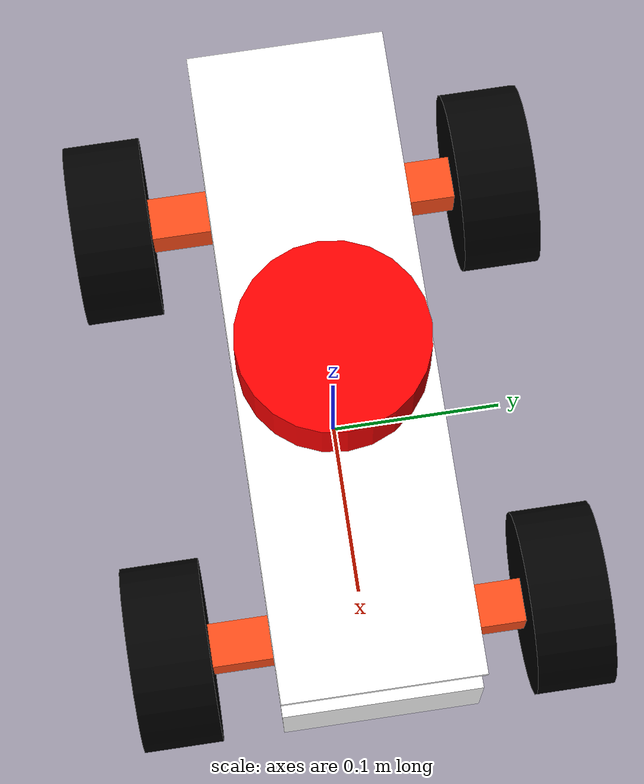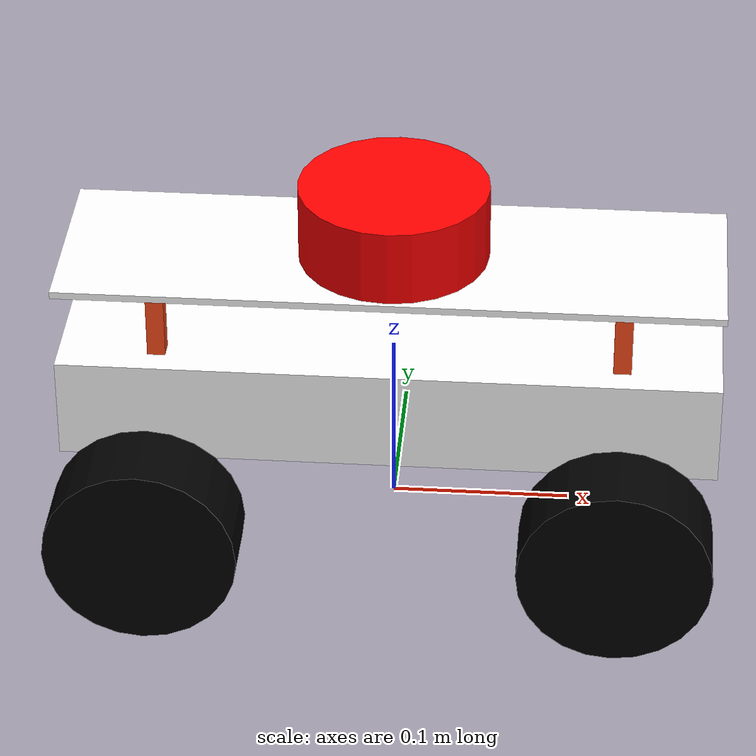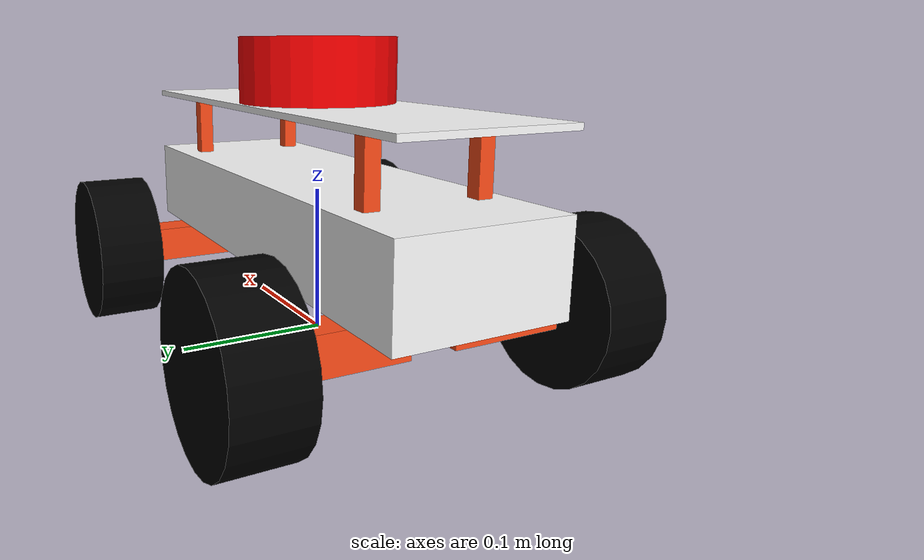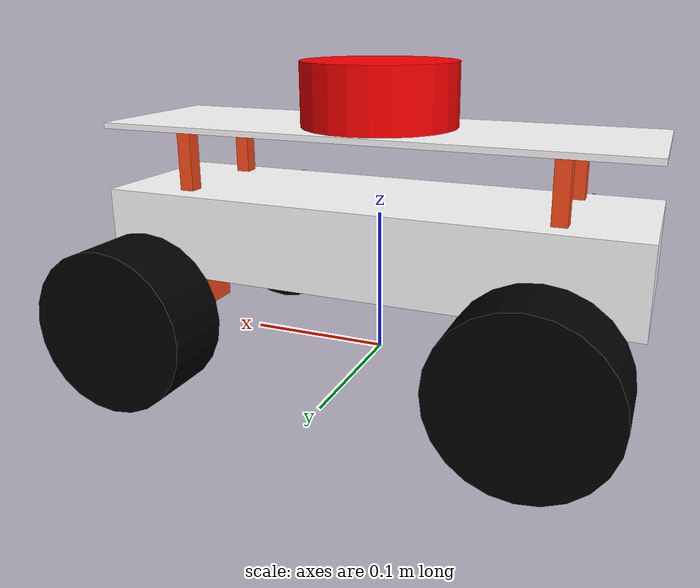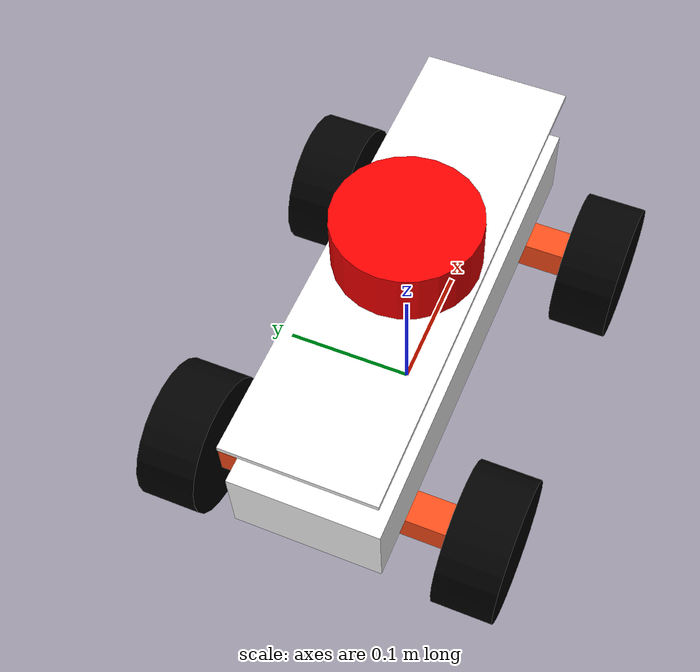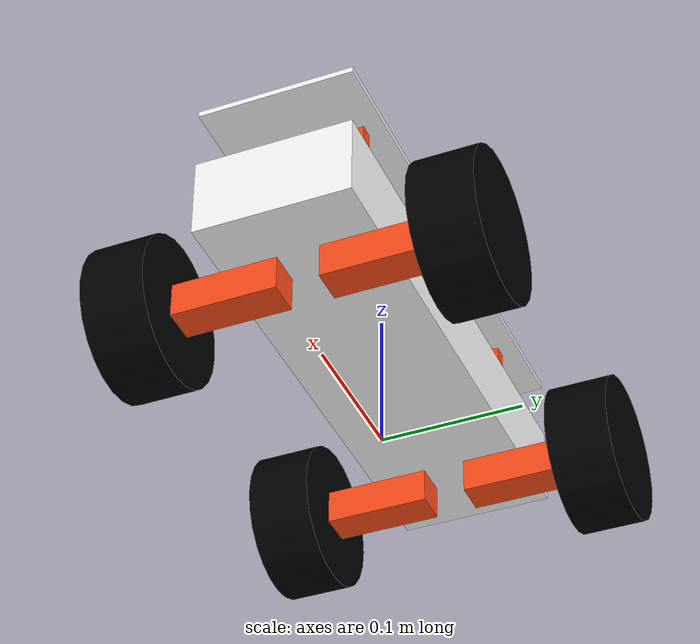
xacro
<?xml version="1.0"?>
<robot xmlns:xacro="http://www.ros.org/wiki/xacro" name="zulu_robot">

    <!-- Example link -->
    <xacro:include filename="$(find charlie_description)/macros/properties.xacro"/>
    <xacro:include filename="robot_core.xacro"/>
    <!-- Sensors -->
    <xacro:include filename="$(find charlie_description)/sensors/lidar_a1.xacro"/><!-- Lidar sensor -->

    <xacro:include filename="$(find charlie_description)/sensors/imu_a.xacro"/> <!-- Camera sensor -->

    <!-- ros2_control -->
    <xacro:include filename="ros2_control.xacro"/>

</robot>

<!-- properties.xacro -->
<robot xmlns:xacro="http://www.ros.org/wiki/xacro">
    <!-- Color Definitions -->
    <material name="white">
        <color rgba= "1 1 1 1"/>
    </material>

    <material name="orange">
        <color rgba= "1 0.3 0.1 1"/>
    </material>

    <material name="blue">
        <color rgba= "0.2 0.2 1 1"/>
    </material>

    <material name="black">
        <color rgba= "0 0 0 1"/>
    </material>

    <material name="red">
        <color rgba= "1 0 0 1"/>
    </material>

    <material name="purple">
        <color rgba= "0.58 0.0 0.827 1"/>
    </material>

    <material name="gray">
        <color rgba= "0.5 0.5 0.5 1"/>
    </material>

</robot>

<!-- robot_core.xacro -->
<robot xmlns:xacro="http://www.ros.org/wiki/xacro">

    <!-- Include macros -->
    <xacro:include filename="$(find charlie_description)/macros/inertial_macros.xacro"/>

    <!--Measurements-->
    <xacro:property name="rad_w" value="0.053"/>
    <xacro:property name="le_w" value="0.045"/>
    <xacro:property name="ly" value="0.11072"/>
    <xacro:property name="lx" value="0.367"/>
    <xacro:property name="lz" value="0.058"/>
    <xacro:property name="bscy" value="0.01"/>
    <xacro:property name="bscx" value="0.01"/>
    <xacro:property name="bscz" value="0.043"/>
    <xacro:property name="bhz" value="0.025"/>
    <xacro:property name="bhy" value="0.075"/>
    <xacro:property name="bhx" value="0.025"/>
    <xacro:property name="imu_lx" value="0.03"/>
    <xacro:property name="imu_ly" value="0.03"/>
    <xacro:property name="imu_lz" value="0.01"/>

    <xacro:macro name="wheel_macro" params="p_name p_radius p_width">
        <link name="${p_name}">
            <visual>
                <geometry>
                    <cylinder radius="${p_radius}" length="${p_width}"/>
                </geometry>
                <material name="black"/>
            </visual>
            <collision>
                <geometry>
                    <sphere radius="${p_radius}" />
                </geometry>

            </collision>
            <xacro:inertial_cylinder mass="0.1" length="${p_width}" radius="${p_radius}">
                <origin xyz="0 0 0" rpy="0 0 0"/>
            </xacro:inertial_cylinder>
        </link>
    </xacro:macro>

    <xacro:macro name="barras" params="p_name p_x p_y p_z">
        <link name="${p_name}">
            <visual>
                <origin xyz="0 0 0"/>
                <geometry>
                    <box size="${p_x} ${p_y} ${p_z}"/>
                </geometry>
                <material name="orange"/>
            </visual>
            <collision>
                <origin xyz="0 0 0"/>
                <geometry>
                <box size="${p_x} ${p_y} ${p_z}"/>
                </geometry>
            </collision>
            <xacro:inertial_box mass="2.0" x="${p_x}" y="${p_y}" z="${p_z}">
                <origin xyz="0 0 0" rpy="0 0 0"/>
            </xacro:inertial_box>
        </link>
    </xacro:macro>

    <xacro:macro name="barra_horizontal" params="p_name p_x p_y p_z origin">
        <link name="${p_name}">
            <visual>
                <origin xyz="0 ${origin} 0"/>
                <geometry>
                    <box size="${p_x} ${p_y} ${p_z}"/>
                </geometry>
                <material name="orange"/>
            </visual>
            <collision>
                <origin xyz="0 ${origin} 0"/>
                <geometry>
                <box size="${p_x} ${p_y} ${p_z}"/>
                </geometry>
            </collision>
            <xacro:inertial_box mass="2.0" x="${p_x}" y="${p_y}" z="${p_z}">
                <origin xyz="0 0 0" rpy="0 0 0"/>
            </xacro:inertial_box>
        </link>
    </xacro:macro>

    <!-- Example link -->
    <link name="base_link">
    </link>

    <joint name="base_link_joint" type="fixed">
        <parent link="base_link"/>
        <child link="chassis"/>
        <origin xyz="0 0 ${0.055+(lz/2)}"/>
    </joint>

    <link name="chassis">
        <visual>
            <origin xyz="0 0 0"/>
            <geometry>
                <box size="${lx} ${ly} ${lz}"/>
            </geometry>
            <material name="white"/>
        </visual>
        <collision>
            <origin xyz="0 0 0"/>
            <geometry>
               <box size="${lx} ${ly} ${lz}"/>
            </geometry>
        </collision>
        <xacro:inertial_box mass="5.0" x="${lx}" y="${ly}" z="${lz}">
            <origin xyz="0 0 0" rpy="0 0 0"/>
        </xacro:inertial_box>
    </link>

    <joint name="chassis_soporte" type="fixed">
        <parent link="chassis"/>
        <child link="soporte"/>
        <origin xyz="0 0 ${(lz/2)+(bscz)+0.002}"/>
    </joint>

    <link name="soporte">
        <visual>
            <origin xyz="0 0 0"/>
            <geometry>
                <box size="${lx} ${ly} ${0.004}"/>
            </geometry>
            <material name="white"/>
        </visual>
        <collision>
            <origin xyz="0 0 0"/>
            <geometry>
               <box size="${lx} ${ly} ${0.004}"/>
            </geometry>
        </collision>
        <xacro:inertial_box mass="5.0" x="${lx}" y="${ly}" z="${0.004}">
            <origin xyz="0 0 0" rpy="0 0 0"/>
        </xacro:inertial_box>
    </link>

    <!--Pata trasera derecha-->
    <joint name="chassis_verticalbar_1" type="fixed">
        <parent link="chassis"/>
        <child link="barra_vertical_tr_link"/>
        <origin xyz="${0.257/2} ${ly/3} ${bscz+0.008}"/>
    </joint>

    <xacro:barras p_name="barra_vertical_tr_link" p_x="${bscx}" p_y="${bscy}" p_z="${bscz}"/>

    <!--Pata trasera izquierda-->
    <joint name="chassis_verticalbar_2" type="fixed">
        <parent link="chassis"/>
        <child link="barra_vertical_tr_l_link"/>
        <origin xyz="${0.257/2} ${-ly/3} ${bscz+0.008}"/>
    </joint>

    <xacro:barras p_name="barra_vertical_tr_l_link" p_x="${bscx}" p_y="${bscy}" p_z="${bscz}"/>

    <!--Pata delantera derecha-->
    <joint name="chassis_verticalbar_3" type="fixed">
        <parent link="chassis"/>
        <child link="barra_vertical_de_link"/>
        <origin xyz="${-0.257/2} ${ly/3} ${bscz+0.008}"/>
    </joint>

    <xacro:barras p_name="barra_vertical_de_link" p_x="${bscx}" p_y="${bscy}" p_z="${bscz}"/>

    <!--Pata trasera izquierda-->
    <joint name="chassis_verticalbar_4" type="fixed">
        <parent link="chassis"/>
        <child link="barra_vertical_de_l_link"/>
        <origin xyz="${-0.257/2} ${-ly/3} ${bscz+0.008}"/>
    </joint>

    <xacro:barras p_name="barra_vertical_de_l_link" p_x="${bscx}" p_y="${bscy}" p_z="${bscz}"/>

    <!--Barra trasera derecha-->
    <joint name="chassis_horizontalbar_1" type="revolute">
        <parent link="chassis"/>
        <child link="barra_horizontal_tr_link"/>
        <origin xyz="${0.257/2} 0.035  ${-(lz+bhz)/2}" rpy="0 0 0"/>
        <axis xyz="0 0 1"/>
        <limit effort="1" lower="-${pi/4}" upper="${pi/4}" velocity="1"/>
        <dynamics damping="0.2" friction="0"/>
    </joint>

    <xacro:barra_horizontal p_name="barra_horizontal_tr_link" p_x="${bhx}" p_y="${bhy}" p_z="${bhz}" origin="${0.0175}"/>

    <joint name="rightb_wheel_joint" type="continuous">
        <parent link="barra_horizontal_tr_link"/>
        <child link="rightb_wheel"/>
        <origin xyz="0 ${0.055+le_w/2} 0" rpy="-${pi/2} 0 0"/>
        <axis xyz="0 0 1"/>
        <dynamics damping="0.2" friction="0.0"/>
    </joint>

    <xacro:wheel_macro p_name="rightb_wheel" p_radius="${rad_w}" p_width="${le_w}"/>

      <!--Barra trasera izquierda-->

    <joint name="chassis_horizontalbar_2" type="revolute">
        <parent link="chassis"/>
        <child link="barra_horizontal_ti_link"/>
        <origin xyz="${0.257/2} -0.035  ${-(lz+bhz)/2}" rpy="0 0 0"/>
        <axis xyz="0 0 1"/>
        <limit effort="1" lower="-${pi/4}" upper="${pi/4}" velocity="1"/>
        <dynamics damping="0.2" friction="0"/>
    </joint>

    <xacro:barra_horizontal p_name="barra_horizontal_ti_link" p_x="${bhx}" p_y="${bhy}" p_z="${bhz}" origin="${-0.0175}"/>

    <joint name="leftb_wheel_joint" type="continuous">
        <parent link="barra_horizontal_ti_link"/>
        <child link="leftb_wheel"/>
        <origin xyz="0 ${-(0.055+le_w/2)} 0" rpy="-${pi/2} 0 0"/>
        <axis xyz="0 0 1"/>
        <dynamics damping="0.2" friction="0.0"/>
    </joint>

    <xacro:wheel_macro p_name="leftb_wheel" p_radius="${rad_w}" p_width="${le_w}"/>

    <!--Barra delantera derecha-->
    <joint name="chassis_horizontalbar_3" type="revolute">
        <parent link="chassis"/>
        <child link="barra_horizontal_fr_link"/>
        <origin xyz="${-0.257/2} 0.035  ${-(lz+bhz)/2}" rpy="0 0 0"/>
        <axis xyz="0 0 1"/>
        <limit effort="1" lower="-${pi/4}" upper="${pi/4}" velocity="1"/>
        <dynamics damping="0.2" friction="0"/>
    </joint>

    <xacro:barra_horizontal p_name="barra_horizontal_fr_link" p_x="${bhx}" p_y="${bhy}" p_z="${bhz}" origin="${0.0175}"/>

    <joint name="rightf_wheel_joint" type="continuous">
        <parent link="barra_horizontal_fr_link"/>
        <child link="rightf_wheel"/>
        <origin xyz="0 ${0.055+le_w/2} 0" rpy="-${pi/2} 0 0"/>
        <axis xyz="0 0 1"/>
        <dynamics damping="0.2" friction="0.0"/>
    </joint>

    <xacro:wheel_macro p_name="rightf_wheel" p_radius="${rad_w}" p_width="${le_w}"/>

    <!--Barra delantera izquierda-->

    <joint name="chassis_horizontalbar_4" type="revolute">
        <parent link="chassis"/>
        <child link="barra_horizontal_fi_link"/>
        <origin xyz="${-0.257/2} -0.035  ${-(lz+bhz)/2}" rpy="0 0 0"/>
        <axis xyz="0 0 1"/>
        <limit effort="1" lower="-${pi/4}" upper="${pi/4}" velocity="1"/>
        <dynamics damping="0.2" friction="0"/>
    </joint>

    <xacro:barra_horizontal p_name="barra_horizontal_fi_link" p_x="${bhx}" p_y="${bhy}" p_z="${bhz}" origin="${-0.0175}"/>

    <joint name="leftf_wheel_joint" type="continuous">
        <parent link="barra_horizontal_fi_link"/>
        <child link="leftf_wheel"/>
        <origin xyz="0 ${-(0.055+le_w/2)} 0" rpy="-${pi/2} 0 0"/>
        <axis xyz="0 0 1"/>
        <dynamics damping="0.2" friction="0.0"/>
    </joint>

    <xacro:wheel_macro p_name="leftf_wheel" p_radius="${rad_w}" p_width="${le_w}"/>

</robot>

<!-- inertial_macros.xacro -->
<robot xmlns:xacro="http://www.ros.org/wiki/xacro" >

    <!-- Specify some standard inertial calculations https://en.wikipedia.org/wiki/List_of_moments_of_inertia -->
    <!-- These make use of xacro's mathematical functionality -->

    <xacro:macro name="inertial_sphere" params="mass radius *origin">
        <inertial>
            <xacro:insert_block name="origin"/>
            <mass value="${mass}" />
            <inertia ixx="${(2/5) * mass * (radius*radius)}" ixy="0.0" ixz="0.0"
                    iyy="${(2/5) * mass * (radius*radius)}" iyz="0.0"
                    izz="${(2/5) * mass * (radius*radius)}" />
        </inertial>
    </xacro:macro>

    <xacro:macro name="inertial_box" params="mass x y z *origin">
        <inertial>
            <xacro:insert_block name="origin"/>
            <mass value="${mass}" />
            <inertia ixx="${(1/12) * mass * (y*y+z*z)}" ixy="0.0" ixz="0.0"
                    iyy="${(1/12) * mass * (x*x+z*z)}" iyz="0.0"
                    izz="${(1/12) * mass * (x*x+y*y)}" />
        </inertial>
    </xacro:macro>

    <xacro:macro name="inertial_cylinder" params="mass length radius *origin">
        <inertial>
            <xacro:insert_block name="origin"/>
            <mass value="${mass}" />
            <inertia ixx="${(1/12) * mass * (3*radius*radius + length*length)}" ixy="0.0" ixz="0.0"
                    iyy="${(1/12) * mass * (3*radius*radius + length*length)}" iyz="0.0"
                    izz="${(1/2) * mass * (radius*radius)}" />
        </inertial>
    </xacro:macro>
</robot>

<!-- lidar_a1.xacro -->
<robot xmlns:xacro="http://www.ros.org/wiki/xacro" >

    <!-- Lidar link -->
    <link name="lidar_link">
         <visual>
            <geometry>
                <cylinder radius="${rad_w}" length="${le_w}"/>
            </geometry>
            <material name="red"/>
        </visual>
        <collision>
            <geometry>
                <cylinder radius="${rad_w}" length="${le_w}"/>
            </geometry>
        </collision>
        <xacro:inertial_cylinder mass="0.1" length="${le_w}" radius="${rad_w}">
            <origin xyz="0 0 0" rpy="0 0 0"/>
        </xacro:inertial_cylinder>
    </link>

    <joint name="lidar_chassis_joint" type="fixed">
        <parent link="chassis"/>
        <child link="lidar_link"/>
        <origin xyz="0 0 ${(lz+le_w/2)+0.016}" rpy="0 0 3.1416"/>
    </joint>

    <gazebo reference="lidar_link">
    <sensor name="lidar" type="gpu_lidar">
        <always_on>true</always_on>
        <update_rate>10</update_rate>
        <visualize>true</visualize>
        <topic>scan</topic>
        <gz_frame_id>lidar_link</gz_frame_id>

        <lidar>
        <scan>
            <horizontal>
            <samples>720</samples>
            <min_angle>-3.14159</min_angle>
            <max_angle>3.14159</max_angle>
            </horizontal>
        </scan>
        <range>
            <min>0.12</min>
            <max>12.0</max>
        </range>
        </lidar>
    </sensor>
    </gazebo>

</robot>

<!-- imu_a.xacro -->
<robot xmlns:xacro="http://www.ros.org/wiki/xacro" >

    <link name="imu_link">
        <visual>
            <geometry>
                <box size="${imu_lx} ${imu_ly} ${imu_lz}"/>
            </geometry>
            <material name="orange">
                <color rgba="0 0 0 1"/>
            </material>
        </visual>
        <collision>
            <geometry>
                <box size="${imu_lx} ${imu_ly} ${imu_lz}"/>
            </geometry>
        </collision>
        <xacro:inertial_box mass="0.01" x="${imu_lx}" y="${imu_ly}" z="${imu_lz}">
            <origin xyz="0 0 0" rpy="0 0 0"/>
        </xacro:inertial_box>
    </link>

    <joint name="imu_joint" type="fixed">
        <parent link="chassis"/>
        <child link="imu_link"/>
        <origin xyz="${0.06217} ${-0.025} ${lz/2 + imu_lz/2+0.036}" rpy="3.14159 0 0"/>
    </joint>

    <gazebo reference="imu_link">
        <gravity>true</gravity>
        <sensor name="imu_sensor" type="imu">
            <always_on>true</always_on>
            <update_rate>100</update_rate> <visualize>true</visualize>
            <topic>imu</topic>
            <gz_frame_id>imu_link</gz_frame_id>

            <imu>
                <angular_velocity>
                    <x>
                        <noise type="gaussian">
                            <mean>0.0</mean>
                            <stddev>2e-4</stddev>
                        </noise>
                    </x>
                    <y>
                        <noise type="gaussian">
                            <mean>0.0</mean>
                            <stddev>2e-4</stddev>
                        </noise>
                    </y>
                    <z>
                        <noise type="gaussian">
                            <mean>0.0</mean>
                            <stddev>2e-4</stddev>
                        </noise>
                    </z>
                </angular_velocity>
                <linear_acceleration>
                    <x>
                        <noise type="gaussian">
                            <mean>0.0</mean>
                            <stddev>1.7e-2</stddev>
                        </noise>
                    </x>
                    <y>
                        <noise type="gaussian">
                            <mean>0.0</mean>
                            <stddev>1.7e-2</stddev>
                        </noise>
                    </y>
                    <z>
                        <noise type="gaussian">
                            <mean>0.0</mean>
                            <stddev>1.7e-2</stddev>
                        </noise>
                    </z>
                </linear_acceleration>
            </imu>
        </sensor>
    </gazebo>

</robot>
